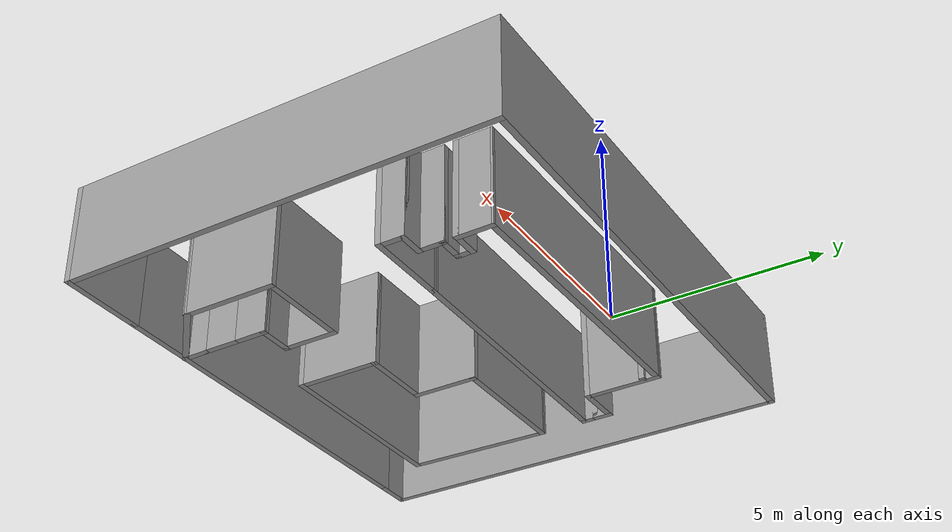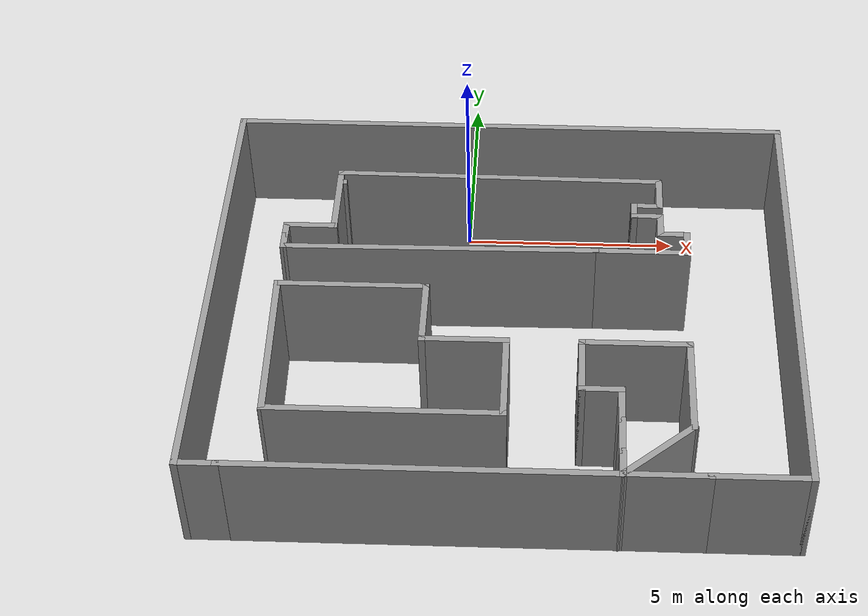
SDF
<?xml version='1.0'?>
<sdf version='1.6'>
  <model name='model'>
    <pose frame=''>0.933048 -3.92554 0 0 -0 0</pose>
    <link name='Wall_0'>
      <collision name='Wall_0_Collision'>
        <geometry>
          <box>
            <size>7.71488 0.15 2.5</size>
          </box>
        </geometry>
        <pose frame=''>0 0 1.25 0 -0 0</pose>
      </collision>
      <visual name='Wall_0_Visual'>
        <pose frame=''>0 0 1.25 0 -0 0</pose>
        <geometry>
          <box>
            <size>7.71488 0.15 2.5</size>
          </box>
        </geometry>
        <material>
          <script>
            <uri>file://media/materials/scripts/gazebo.material</uri>
            <name>Gazebo/Grey</name>
          </script>
          <ambient>1 1 1 1</ambient>
        </material>
        <meta>
          <layer>0</layer>
        </meta>
      </visual>
      <pose frame=''>-0.175394 3.55957 0 0 -0 -0.011642</pose>
    </link>
    <link name='Wall_1'>
      <collision name='Wall_1_Collision'>
        <geometry>
          <box>
            <size>1 0.15 2.5</size>
          </box>
        </geometry>
        <pose frame=''>0 0 1.25 0 -0 0</pose>
      </collision>
      <visual name='Wall_1_Visual'>
        <pose frame=''>0 0 1.25 0 -0 0</pose>
        <geometry>
          <box>
            <size>1 0.15 2.5</size>
          </box>
        </geometry>
        <material>
          <script>
            <uri>file://media/materials/scripts/gazebo.material</uri>
            <name>Gazebo/Grey</name>
          </script>
          <ambient>1 1 1 1</ambient>
        </material>
        <meta>
          <layer>0</layer>
        </meta>
      </visual>
      <pose frame=''>3.60695 3.09054 0 0 -0 -1.5708</pose>
    </link>
    <link name='Wall_12'>
      <collision name='Wall_12_Collision'>
        <geometry>
          <box>
            <size>3.5 0.15 2.5</size>
          </box>
        </geometry>
        <pose frame=''>0 0 1.25 0 -0 0</pose>
      </collision>
      <visual name='Wall_12_Visual'>
        <pose frame=''>0 0 1.25 0 -0 0</pose>
        <geometry>
          <box>
            <size>3.5 0.15 2.5</size>
          </box>
        </geometry>
        <material>
          <script>
            <uri>file://media/materials/scripts/gazebo.material</uri>
            <name>Gazebo/Grey</name>
          </script>
          <ambient>1 1 1 1</ambient>
        </material>
        <meta>
          <layer>0</layer>
        </meta>
      </visual>
      <pose frame=''>-3.375 -0.159602 0 0 -0 3.14159</pose>
    </link>
    <link name='Wall_15'>
      <collision name='Wall_15_Collision'>
        <geometry>
          <box>
            <size>0.15 0.15 2.5</size>
          </box>
        </geometry>
        <pose frame=''>0 0 1.25 0 -0 0</pose>
      </collision>
      <visual name='Wall_15_Visual'>
        <pose frame=''>0 0 1.25 0 -0 0</pose>
        <geometry>
          <box>
            <size>0.15 0.15 2.5</size>
          </box>
        </geometry>
        <material>
          <script>
            <uri>file://media/materials/scripts/gazebo.material</uri>
            <name>Gazebo/Grey</name>
          </script>
          <ambient>1 1 1 1</ambient>
        </material>
        <meta>
          <layer>0</layer>
        </meta>
      </visual>
      <pose frame=''>-3.86715 3.26554 0 0 -0 0</pose>
    </link>
    <link name='Wall_18'>
      <collision name='Wall_18_Collision'>
        <geometry>
          <box>
            <size>2 0.15 2.5</size>
          </box>
        </geometry>
        <pose frame=''>0 0 1.25 0 -0 0</pose>
      </collision>
      <visual name='Wall_18_Visual'>
        <pose frame=''>0 0 1.25 0 -0 0</pose>
        <geometry>
          <box>
            <size>2 0.15 2.5</size>
          </box>
        </geometry>
        <material>
          <script>
            <uri>file://media/materials/scripts/gazebo.material</uri>
            <name>Gazebo/Grey</name>
          </script>
          <ambient>1 1 1 1</ambient>
        </material>
        <meta>
          <layer>0</layer>
        </meta>
      </visual>
      <pose frame=''>-3.95774 2.67861 0 0 -0 -1.5708</pose>
    </link>
    <link name='Wall_19'>
      <collision name='Wall_19_Collision'>
        <geometry>
          <box>
            <size>1.25 0.15 2.5</size>
          </box>
        </geometry>
        <pose frame=''>0 0 1.25 0 -0 0</pose>
      </collision>
      <visual name='Wall_19_Visual'>
        <pose frame=''>0 0 1.25 0 -0 0</pose>
        <geometry>
          <box>
            <size>1.25 0.15 2.5</size>
          </box>
        </geometry>
        <material>
          <script>
            <uri>file://media/materials/scripts/gazebo.material</uri>
            <name>Gazebo/Grey</name>
          </script>
          <ambient>1 1 1 1</ambient>
        </material>
        <meta>
          <layer>0</layer>
        </meta>
      </visual>
      <pose frame=''>-4.50774 1.75361 0 0 -0 3.14159</pose>
    </link>
    <link name='Wall_2'>
      <collision name='Wall_2_Collision'>
        <geometry>
          <box>
            <size>0.75 0.15 2.5</size>
          </box>
        </geometry>
        <pose frame=''>0 0 1.25 0 -0 0</pose>
      </collision>
      <visual name='Wall_2_Visual'>
        <pose frame=''>0 0 1.25 0 -0 0</pose>
        <geometry>
          <box>
            <size>0.75 0.15 2.5</size>
          </box>
        </geometry>
        <material>
          <script>
            <uri>file://media/materials/scripts/gazebo.material</uri>
            <name>Gazebo/Grey</name>
          </script>
          <ambient>1 1 1 1</ambient>
        </material>
        <meta>
          <layer>0</layer>
        </meta>
      </visual>
      <pose frame=''>3.30695 2.66554 0 0 -0 3.14159</pose>
    </link>
    <link name='Wall_23'>
      <collision name='Wall_23_Collision'>
        <geometry>
          <box>
            <size>0.5 0.15 2.5</size>
          </box>
        </geometry>
        <pose frame=''>0 0 1.25 0 -0 0</pose>
      </collision>
      <visual name='Wall_23_Visual'>
        <pose frame=''>0 0 1.25 0 -0 0</pose>
        <geometry>
          <box>
            <size>0.5 0.15 2.5</size>
          </box>
        </geometry>
        <material>
          <script>
            <uri>file://media/materials/scripts/gazebo.material</uri>
            <name>Gazebo/Grey</name>
          </script>
          <ambient>1 1 1 1</ambient>
        </material>
        <meta>
          <layer>0</layer>
        </meta>
      </visual>
      <pose frame=''>-5.05774 1.57861 0 0 -0 -1.5708</pose>
    </link>
    <link name='Wall_24'>
      <collision name='Wall_24_Collision'>
        <geometry>
          <box>
            <size>0.5 0.15 2.5</size>
          </box>
        </geometry>
        <pose frame=''>0 0 1.25 0 -0 0</pose>
      </collision>
      <visual name='Wall_24_Visual'>
        <pose frame=''>0 0 1.25 0 -0 0</pose>
        <geometry>
          <box>
            <size>0.5 0.15 2.5</size>
          </box>
        </geometry>
        <material>
          <script>
            <uri>file://media/materials/scripts/gazebo.material</uri>
            <name>Gazebo/Grey</name>
          </script>
          <ambient>1 1 1 1</ambient>
        </material>
        <meta>
          <layer>0</layer>
        </meta>
      </visual>
      <pose frame=''>-5.05774 1.22861 0 0 -0 -1.5708</pose>
    </link>
    <link name='Wall_25'>
      <collision name='Wall_25_Collision'>
        <geometry>
          <box>
            <size>7.31496 0.15 2.5</size>
          </box>
        </geometry>
        <pose frame=''>0 0 1.25 0 -0 0</pose>
      </collision>
      <visual name='Wall_25_Visual'>
        <pose frame=''>0 0 1.25 0 -0 0</pose>
        <geometry>
          <box>
            <size>7.31496 0.15 2.5</size>
          </box>
        </geometry>
        <material>
          <script>
            <uri>file://media/materials/scripts/gazebo.material</uri>
            <name>Gazebo/Grey</name>
          </script>
          <ambient>1 1 1 1</ambient>
        </material>
        <meta>
          <layer>0</layer>
        </meta>
      </visual>
      <pose frame=''>-1.47539 1.08457 0 0 -0 0.008643</pose>
    </link>
    <link name='Wall_27'>
      <collision name='Wall_27_Collision'>
        <geometry>
          <box>
            <size>1.75 0.15 2.5</size>
          </box>
        </geometry>
        <pose frame=''>0 0 1.25 0 -0 0</pose>
      </collision>
      <visual name='Wall_27_Visual'>
        <pose frame=''>0 0 1.25 0 -0 0</pose>
        <geometry>
          <box>
            <size>1.75 0.15 2.5</size>
          </box>
        </geometry>
        <material>
          <script>
            <uri>file://media/materials/scripts/gazebo.material</uri>
            <name>Gazebo/Grey</name>
          </script>
          <ambient>1 1 1 1</ambient>
        </material>
        <meta>
          <layer>0</layer>
        </meta>
      </visual>
      <pose frame=''>-1.7 -0.959602 0 0 -0 -1.5708</pose>
    </link>
    <link name='Wall_29'>
      <collision name='Wall_29_Collision'>
        <geometry>
          <box>
            <size>2.5 0.15 2.5</size>
          </box>
        </geometry>
        <pose frame=''>0 0 1.25 0 -0 0</pose>
      </collision>
      <visual name='Wall_29_Visual'>
        <pose frame=''>0 0 1.25 0 -0 0</pose>
        <geometry>
          <box>
            <size>2.5 0.15 2.5</size>
          </box>
        </geometry>
        <material>
          <script>
            <uri>file://media/materials/scripts/gazebo.material</uri>
            <name>Gazebo/Grey</name>
          </script>
          <ambient>1 1 1 1</ambient>
        </material>
        <meta>
          <layer>0</layer>
        </meta>
      </visual>
      <pose frame=''>4.15 -2.9346 0 0 -0 -1.5708</pose>
    </link>
    <link name='Wall_3'>
      <collision name='Wall_3_Collision'>
        <geometry>
          <box>
            <size>0.5 0.15 2.5</size>
          </box>
        </geometry>
        <pose frame=''>0 0 1.25 0 -0 0</pose>
      </collision>
      <visual name='Wall_3_Visual'>
        <pose frame=''>0 0 1.25 0 -0 0</pose>
        <geometry>
          <box>
            <size>0.5 0.15 2.5</size>
          </box>
        </geometry>
        <material>
          <script>
            <uri>file://media/materials/scripts/gazebo.material</uri>
            <name>Gazebo/Grey</name>
          </script>
          <ambient>1 1 1 1</ambient>
        </material>
        <meta>
          <layer>0</layer>
        </meta>
      </visual>
      <pose frame=''>3.00695 2.49054 0 0 -0 -1.5708</pose>
    </link>
    <link name='Wall_32'>
      <collision name='Wall_32_Collision'>
        <geometry>
          <box>
            <size>2 0.15 2.5</size>
          </box>
        </geometry>
        <pose frame=''>0 0 1.25 0 -0 0</pose>
      </collision>
      <visual name='Wall_32_Visual'>
        <pose frame=''>0 0 1.25 0 -0 0</pose>
        <geometry>
          <box>
            <size>2 0.15 2.5</size>
          </box>
        </geometry>
        <material>
          <script>
            <uri>file://media/materials/scripts/gazebo.material</uri>
            <name>Gazebo/Grey</name>
          </script>
          <ambient>1 1 1 1</ambient>
        </material>
        <meta>
          <layer>0</layer>
        </meta>
      </visual>
      <pose frame=''>-0.775 -1.7596 0 0 -0 0</pose>
    </link>
    <link name='Wall_33'>
      <collision name='Wall_33_Collision'>
        <geometry>
          <box>
            <size>2.25 0.15 2.5</size>
          </box>
        </geometry>
        <pose frame=''>0 0 1.25 0 -0 0</pose>
      </collision>
      <visual name='Wall_33_Visual'>
        <pose frame=''>0 0 1.25 0 -0 0</pose>
        <geometry>
          <box>
            <size>2.25 0.15 2.5</size>
          </box>
        </geometry>
        <material>
          <script>
            <uri>file://media/materials/scripts/gazebo.material</uri>
            <name>Gazebo/Grey</name>
          </script>
          <ambient>1 1 1 1</ambient>
        </material>
        <meta>
          <layer>0</layer>
        </meta>
      </visual>
      <pose frame=''>0.15 -2.8096 0 0 -0 -1.5708</pose>
    </link>
    <link name='Wall_34'>
      <collision name='Wall_34_Collision'>
        <geometry>
          <box>
            <size>5.25 0.15 2.5</size>
          </box>
        </geometry>
        <pose frame=''>0 0 1.25 0 -0 0</pose>
      </collision>
      <visual name='Wall_34_Visual'>
        <pose frame=''>0 0 1.25 0 -0 0</pose>
        <geometry>
          <box>
            <size>5.25 0.15 2.5</size>
          </box>
        </geometry>
        <material>
          <script>
            <uri>file://media/materials/scripts/gazebo.material</uri>
            <name>Gazebo/Grey</name>
          </script>
          <ambient>1 1 1 1</ambient>
        </material>
        <meta>
          <layer>0</layer>
        </meta>
      </visual>
      <pose frame=''>-2.4 -3.8596 0 0 -0 3.14159</pose>
    </link>
    <link name='Wall_35'>
      <collision name='Wall_35_Collision'>
        <geometry>
          <box>
            <size>3.85135 0.15 2.5</size>
          </box>
        </geometry>
        <pose frame=''>0 0 1.25 0 -0 0</pose>
      </collision>
      <visual name='Wall_35_Visual'>
        <pose frame=''>0 0 1.25 0 -0 0</pose>
        <geometry>
          <box>
            <size>3.85135 0.15 2.5</size>
          </box>
        </geometry>
        <material>
          <script>
            <uri>file://media/materials/scripts/gazebo.material</uri>
            <name>Gazebo/Grey</name>
          </script>
          <ambient>1 1 1 1</ambient>
        </material>
        <meta>
          <layer>0</layer>
        </meta>
      </visual>
      <pose frame=''>-5 -2.0096 0 0 -0 1.59782</pose>
    </link>
    <link name='Wall_37'>
      <collision name='Wall_37_Collision'>
        <geometry>
          <box>
            <size>2.5 0.15 2.5</size>
          </box>
        </geometry>
        <pose frame=''>0 0 1.25 0 -0 0</pose>
      </collision>
      <visual name='Wall_37_Visual'>
        <pose frame=''>0 0 1.25 0 -0 0</pose>
        <geometry>
          <box>
            <size>2.5 0.15 2.5</size>
          </box>
        </geometry>
        <material>
          <script>
            <uri>file://media/materials/scripts/gazebo.material</uri>
            <name>Gazebo/Grey</name>
          </script>
          <ambient>1 1 1 1</ambient>
        </material>
        <meta>
          <layer>0</layer>
        </meta>
      </visual>
      <pose frame=''>2.975 -1.7596 0 0 -0 3.14159</pose>
    </link>
    <link name='Wall_38'>
      <collision name='Wall_38_Collision'>
        <geometry>
          <box>
            <size>1.5 0.15 2.5</size>
          </box>
        </geometry>
        <pose frame=''>0 0 1.25 0 -0 0</pose>
      </collision>
      <visual name='Wall_38_Visual'>
        <pose frame=''>0 0 1.25 0 -0 0</pose>
        <geometry>
          <box>
            <size>1.5 0.15 2.5</size>
          </box>
        </geometry>
        <material>
          <script>
            <uri>file://media/materials/scripts/gazebo.material</uri>
            <name>Gazebo/Grey</name>
          </script>
          <ambient>1 1 1 1</ambient>
        </material>
        <meta>
          <layer>0</layer>
        </meta>
      </visual>
      <pose frame=''>1.8 -2.4346 0 0 -0 -1.5708</pose>
    </link>
    <link name='Wall_39'>
      <collision name='Wall_39_Collision'>
        <geometry>
          <box>
            <size>1 0.15 2.5</size>
          </box>
        </geometry>
        <pose frame=''>0 0 1.25 0 -0 0</pose>
      </collision>
      <visual name='Wall_39_Visual'>
        <pose frame=''>0 0 1.25 0 -0 0</pose>
        <geometry>
          <box>
            <size>1 0.15 2.5</size>
          </box>
        </geometry>
        <material>
          <script>
            <uri>file://media/materials/scripts/gazebo.material</uri>
            <name>Gazebo/Grey</name>
          </script>
          <ambient>1 1 1 1</ambient>
        </material>
        <meta>
          <layer>0</layer>
        </meta>
      </visual>
      <pose frame=''>2.225 -3.1096 0 0 -0 0</pose>
    </link>
    <link name='Wall_4'>
      <collision name='Wall_4_Collision'>
        <geometry>
          <box>
            <size>0.75 0.15 2.5</size>
          </box>
        </geometry>
        <pose frame=''>0 0 1.25 0 -0 0</pose>
      </collision>
      <visual name='Wall_4_Visual'>
        <pose frame=''>0 0 1.25 0 -0 0</pose>
        <geometry>
          <box>
            <size>0.75 0.15 2.5</size>
          </box>
        </geometry>
        <material>
          <script>
            <uri>file://media/materials/scripts/gazebo.material</uri>
            <name>Gazebo/Grey</name>
          </script>
          <ambient>1 1 1 1</ambient>
        </material>
        <meta>
          <layer>0</layer>
        </meta>
      </visual>
      <pose frame=''>3.30695 2.31554 0 0 -0 0</pose>
    </link>
    <link name='Wall_40'>
      <collision name='Wall_40_Collision'>
        <geometry>
          <box>
            <size>1 0.15 2.5</size>
          </box>
        </geometry>
        <pose frame=''>0 0 1.25 0 -0 0</pose>
      </collision>
      <visual name='Wall_40_Visual'>
        <pose frame=''>0 0 1.25 0 -0 0</pose>
        <geometry>
          <box>
            <size>1 0.15 2.5</size>
          </box>
        </geometry>
        <material>
          <script>
            <uri>file://media/materials/scripts/gazebo.material</uri>
            <name>Gazebo/Grey</name>
          </script>
          <ambient>1 1 1 1</ambient>
        </material>
        <meta>
          <layer>0</layer>
        </meta>
      </visual>
      <pose frame=''>2.65 -3.5346 0 0 -0 -1.5708</pose>
    </link>
    <link name='Wall_41'>
      <collision name='Wall_41_Collision'>
        <geometry>
          <box>
            <size>1 0.15 2.5</size>
          </box>
        </geometry>
        <pose frame=''>0 0 1.25 0 -0 0</pose>
      </collision>
      <visual name='Wall_41_Visual'>
        <pose frame=''>0 0 1.25 0 -0 0</pose>
        <geometry>
          <box>
            <size>1 0.15 2.5</size>
          </box>
        </geometry>
        <material>
          <script>
            <uri>file://media/materials/scripts/gazebo.material</uri>
            <name>Gazebo/Grey</name>
          </script>
          <ambient>1 1 1 1</ambient>
        </material>
        <meta>
          <layer>0</layer>
        </meta>
      </visual>
      <pose frame=''>2.65 -4.3846 0 0 -0 -1.5708</pose>
    </link>
    <link name='Wall_42'>
      <collision name='Wall_42_Collision'>
        <geometry>
          <box>
            <size>0.75 0.15 2.5</size>
          </box>
        </geometry>
        <pose frame=''>0 0 1.25 0 -0 0</pose>
      </collision>
      <visual name='Wall_42_Visual'>
        <pose frame=''>0 0 1.25 0 -0 0</pose>
        <geometry>
          <box>
            <size>0.75 0.15 2.5</size>
          </box>
        </geometry>
        <material>
          <script>
            <uri>file://media/materials/scripts/gazebo.material</uri>
            <name>Gazebo/Grey</name>
          </script>
          <ambient>1 1 1 1</ambient>
        </material>
        <meta>
          <layer>0</layer>
        </meta>
      </visual>
      <pose frame=''>2.65 -5.1096 0 0 -0 -1.5708</pose>
    </link>
    <link name='Wall_43'>
      <collision name='Wall_43_Collision'>
        <geometry>
          <box>
            <size>8.5 0.15 2.5</size>
          </box>
        </geometry>
        <pose frame=''>0 0 1.25 0 -0 0</pose>
      </collision>
      <visual name='Wall_43_Visual'>
        <pose frame=''>0 0 1.25 0 -0 0</pose>
        <geometry>
          <box>
            <size>8.5 0.15 2.5</size>
          </box>
        </geometry>
        <material>
          <script>
            <uri>file://media/materials/scripts/gazebo.material</uri>
            <name>Gazebo/Grey</name>
          </script>
          <ambient>1 1 1 1</ambient>
        </material>
        <meta>
          <layer>0</layer>
        </meta>
      </visual>
      <pose frame=''>-1.525 -5.4096 0 0 -0 3.14159</pose>
    </link>
    <link name='Wall_44'>
      <collision name='Wall_44_Collision'>
        <geometry>
          <box>
            <size>1 0.15 2.5</size>
          </box>
        </geometry>
        <pose frame=''>0 0 1.25 0 -0 0</pose>
      </collision>
      <visual name='Wall_44_Visual'>
        <pose frame=''>0 0 1.25 0 -0 0</pose>
        <geometry>
          <box>
            <size>1 0.15 2.5</size>
          </box>
        </geometry>
        <material>
          <script>
            <uri>file://media/materials/scripts/gazebo.material</uri>
            <name>Gazebo/Grey</name>
          </script>
          <ambient>1 1 1 1</ambient>
        </material>
        <meta>
          <layer>0</layer>
        </meta>
      </visual>
      <pose frame=''>-6.125 -5.4096 0 0 -0 3.14159</pose>
    </link>
    <link name='Wall_45'>
      <collision name='Wall_45_Collision'>
        <geometry>
          <box>
            <size>11 0.15 2.5</size>
          </box>
        </geometry>
        <pose frame=''>0 0 1.25 0 -0 0</pose>
      </collision>
      <visual name='Wall_45_Visual'>
        <pose frame=''>0 0 1.25 0 -0 0</pose>
        <geometry>
          <box>
            <size>11 0.15 2.5</size>
          </box>
        </geometry>
        <material>
          <script>
            <uri>file://media/materials/scripts/gazebo.material</uri>
            <name>Gazebo/Grey</name>
          </script>
          <ambient>1 1 1 1</ambient>
        </material>
        <meta>
          <layer>0</layer>
        </meta>
      </visual>
      <pose frame=''>-6.55 0.015398 0 0 -0 1.5708</pose>
    </link>
    <link name='Wall_46'>
      <collision name='Wall_46_Collision'>
        <geometry>
          <box>
            <size>13.25 0.15 2.5</size>
          </box>
        </geometry>
        <pose frame=''>0 0 1.25 0 -0 0</pose>
      </collision>
      <visual name='Wall_46_Visual'>
        <pose frame=''>0 0 1.25 0 -0 0</pose>
        <geometry>
          <box>
            <size>13.25 0.15 2.5</size>
          </box>
        </geometry>
        <material>
          <script>
            <uri>file://media/materials/scripts/gazebo.material</uri>
            <name>Gazebo/Grey</name>
          </script>
          <ambient>1 1 1 1</ambient>
        </material>
        <meta>
          <layer>0</layer>
        </meta>
      </visual>
      <pose frame=''>-0 5.4404 0 0 -0 0</pose>
    </link>
    <link name='Wall_47'>
      <collision name='Wall_47_Collision'>
        <geometry>
          <box>
            <size>11 0.15 2.5</size>
          </box>
        </geometry>
        <pose frame=''>0 0 1.25 0 -0 0</pose>
      </collision>
      <visual name='Wall_47_Visual'>
        <pose frame=''>0 0 1.25 0 -0 0</pose>
        <geometry>
          <box>
            <size>11 0.15 2.5</size>
          </box>
        </geometry>
        <material>
          <script>
            <uri>file://media/materials/scripts/gazebo.material</uri>
            <name>Gazebo/Grey</name>
          </script>
          <ambient>1 1 1 1</ambient>
        </material>
        <meta>
          <layer>0</layer>
        </meta>
      </visual>
      <pose frame=''>6.55 0.015398 0 0 -0 -1.5708</pose>
    </link>
    <link name='Wall_48'>
      <collision name='Wall_48_Collision'>
        <geometry>
          <box>
            <size>2.25 0.15 2.5</size>
          </box>
        </geometry>
        <pose frame=''>0 0 1.25 0 -0 0</pose>
      </collision>
      <visual name='Wall_48_Visual'>
        <pose frame=''>0 0 1.25 0 -0 0</pose>
        <geometry>
          <box>
            <size>2.25 0.15 2.5</size>
          </box>
        </geometry>
        <material>
          <script>
            <uri>file://media/materials/scripts/gazebo.material</uri>
            <name>Gazebo/Grey</name>
          </script>
          <ambient>1 1 1 1</ambient>
        </material>
        <meta>
          <layer>0</layer>
        </meta>
      </visual>
      <pose frame=''>5.5 -5.4096 0 0 -0 3.14159</pose>
    </link>
    <link name='Wall_49'>
      <collision name='Wall_49_Collision'>
        <geometry>
          <box>
            <size>1.95 0.15 2.5</size>
          </box>
        </geometry>
        <pose frame=''>0 0 1.25 0 -0 0</pose>
      </collision>
      <visual name='Wall_49_Visual'>
        <pose frame=''>0 0 1.25 0 -0 0</pose>
        <geometry>
          <box>
            <size>1.95 0.15 2.5</size>
          </box>
        </geometry>
        <material>
          <script>
            <uri>file://media/materials/scripts/gazebo.material</uri>
            <name>Gazebo/Grey</name>
          </script>
          <ambient>1 1 1 1</ambient>
        </material>
        <meta>
          <layer>0</layer>
        </meta>
      </visual>
      <pose frame=''>3.55 -5.4096 0 0 -0 3.14159</pose>
    </link>
    <link name='Wall_5'>
      <collision name='Wall_5_Collision'>
        <geometry>
          <box>
            <size>0.75 0.15 2.5</size>
          </box>
        </geometry>
        <pose frame=''>0 0 1.25 0 -0 0</pose>
      </collision>
      <visual name='Wall_5_Visual'>
        <pose frame=''>0 0 1.25 0 -0 0</pose>
        <geometry>
          <box>
            <size>0.75 0.15 2.5</size>
          </box>
        </geometry>
        <material>
          <script>
            <uri>file://media/materials/scripts/gazebo.material</uri>
            <name>Gazebo/Grey</name>
          </script>
          <ambient>1 1 1 1</ambient>
        </material>
        <meta>
          <layer>0</layer>
        </meta>
      </visual>
      <pose frame=''>3.60695 2.01554 0 0 -0 -1.5708</pose>
    </link>
    <link name='Wall_50'>
      <collision name='Wall_50_Collision'>
        <geometry>
          <box>
            <size>2.13494 0.15 2.5</size>
          </box>
        </geometry>
        <pose frame=''>0 0 1.25 0 -0 0</pose>
      </collision>
      <visual name='Wall_50_Visual'>
        <pose frame=''>0 0 1.25 0 -0 0</pose>
        <geometry>
          <box>
            <size>2.13494 0.15 2.5</size>
          </box>
        </geometry>
        <material>
          <script>
            <uri>file://media/materials/scripts/gazebo.material</uri>
            <name>Gazebo/Grey</name>
          </script>
          <ambient>1 1 1 1</ambient>
        </material>
        <meta>
          <layer>0</layer>
        </meta>
      </visual>
      <pose frame=''>3.4 -4.7596 0 0 -0 0.714091</pose>
    </link>
    <link name='Wall_6'>
      <collision name='Wall_6_Collision'>
        <geometry>
          <box>
            <size>0.75 0.15 2.5</size>
          </box>
        </geometry>
        <pose frame=''>0 0 1.25 0 -0 0</pose>
      </collision>
      <visual name='Wall_6_Visual'>
        <pose frame=''>0 0 1.25 0 -0 0</pose>
        <geometry>
          <box>
            <size>0.75 0.15 2.5</size>
          </box>
        </geometry>
        <material>
          <script>
            <uri>file://media/materials/scripts/gazebo.material</uri>
            <name>Gazebo/Grey</name>
          </script>
          <ambient>1 1 1 1</ambient>
        </material>
        <meta>
          <layer>0</layer>
        </meta>
      </visual>
      <pose frame=''>3.90695 1.71554 0 0 -0 0</pose>
    </link>
    <link name='Wall_7'>
      <collision name='Wall_7_Collision'>
        <geometry>
          <box>
            <size>0.75 0.15 2.5</size>
          </box>
        </geometry>
        <pose frame=''>0 0 1.25 0 -0 0</pose>
      </collision>
      <visual name='Wall_7_Visual'>
        <pose frame=''>0 0 1.25 0 -0 0</pose>
        <geometry>
          <box>
            <size>0.75 0.15 2.5</size>
          </box>
        </geometry>
        <material>
          <script>
            <uri>file://media/materials/scripts/gazebo.material</uri>
            <name>Gazebo/Grey</name>
          </script>
          <ambient>1 1 1 1</ambient>
        </material>
        <meta>
          <layer>0</layer>
        </meta>
      </visual>
      <pose frame=''>4.20695 1.41554 0 0 -0 -1.5708</pose>
    </link>
    <link name='Wall_8'>
      <collision name='Wall_8_Collision'>
        <geometry>
          <box>
            <size>2.25 0.15 2.5</size>
          </box>
        </geometry>
        <pose frame=''>0 0 1.25 0 -0 0</pose>
      </collision>
      <visual name='Wall_8_Visual'>
        <pose frame=''>0 0 1.25 0 -0 0</pose>
        <geometry>
          <box>
            <size>2.25 0.15 2.5</size>
          </box>
        </geometry>
        <material>
          <script>
            <uri>file://media/materials/scripts/gazebo.material</uri>
            <name>Gazebo/Grey</name>
          </script>
          <ambient>1 1 1 1</ambient>
        </material>
        <meta>
          <layer>0</layer>
        </meta>
      </visual>
      <pose frame=''>3.15695 1.11554 0 0 -0 3.14159</pose>
    </link>
    <static>1</static>
  </model>
</sdf>
